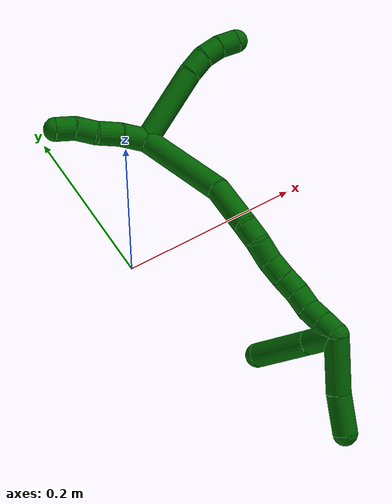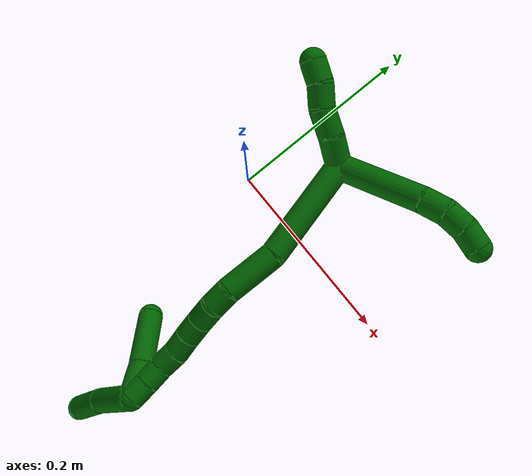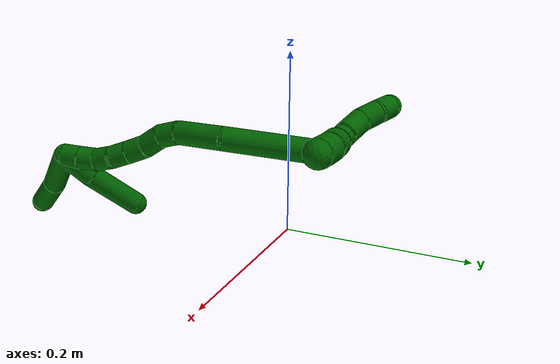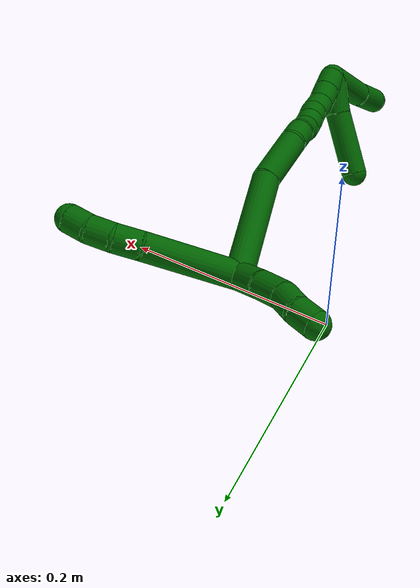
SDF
<sdf version="1.7">
 <world name="default">
  <model name="6">
   <static>0</static>
   <link name="6">
    <collision name="collision-cylinder-e_1_2_8">
     <pose>-0.020938 -0.035732 -0.009565 1.83236 -0.515076 -0.661153</pose>
     <geometry><cylinder><radius>0.0125</radius><length>0.085011</length></cylinder></geometry>
     <surface>
      <friction><ode><mu>1.16</mu><mu2>1.16</mu2><slip1>0</slip1><slip2>0</slip2></ode></friction>
      <contact><ode><kp>1e+06</kp><kd>1</kd><max_vel>0</max_vel><min_depth>0.001</min_depth></ode></contact>
     </surface>
    </collision>
    <visual name="visual-cylinder-e_1_2_8">
     <pose>-0.020938 -0.035732 -0.009565 1.83236 -0.515076 -0.661153</pose>
     <geometry><cylinder><radius>0.0125</radius><length>0.085011</length></cylinder></geometry>
     <material><ambient>0 0.392157 0.003922 1</ambient></material>
    </visual>
    <collision name="collision-cylinder-e_2_8_9">
     <pose>-0.048555 -0.080886 -0.020476 1.71261 -0.611904 -0.698483</pose>
     <geometry><cylinder><radius>0.0125</radius><length>0.023254</length></cylinder></geometry>
     <surface>
      <friction><ode><mu>1.16</mu><mu2>1.16</mu2><slip1>0</slip1><slip2>0</slip2></ode></friction>
      <contact><ode><kp>1e+06</kp><kd>1</kd><max_vel>0</max_vel><min_depth>0.001</min_depth></ode></contact>
     </surface>
    </collision>
    <visual name="visual-cylinder-e_2_8_9">
     <pose>-0.048555 -0.080886 -0.020476 1.71261 -0.611904 -0.698483</pose>
     <geometry><cylinder><radius>0.0125</radius><length>0.023254</length></cylinder></geometry>
     <material><ambient>0 0.392157 0.003922 1</ambient></material>
    </visual>
    <collision name="collision-cylinder-e_3_9_10">
     <pose>-0.062063 -0.098378 -0.020171 1.36914 -0.692267 -0.572589</pose>
     <geometry><cylinder><radius>0.0125</radius><length>0.021399</length></cylinder></geometry>
     <surface>
      <friction><ode><mu>1.16</mu><mu2>1.16</mu2><slip1>0</slip1><slip2>0</slip2></ode></friction>
      <contact><ode><kp>1e+06</kp><kd>1</kd><max_vel>0</max_vel><min_depth>0.001</min_depth></ode></contact>
     </surface>
    </collision>
    <visual name="visual-cylinder-e_3_9_10">
     <pose>-0.062063 -0.098378 -0.020171 1.36914 -0.692267 -0.572589</pose>
     <geometry><cylinder><radius>0.0125</radius><length>0.021399</length></cylinder></geometry>
     <material><ambient>0 0.392157 0.003922 1</ambient></material>
    </visual>
    <collision name="collision-cylinder-e_4_10_6">
     <pose>-0.074849 -0.11366 -0.014535 1.06591 -0.625882 -0.377211</pose>
     <geometry><cylinder><radius>0.0125</radius><length>0.020337</length></cylinder></geometry>
     <surface>
      <friction><ode><mu>1.16</mu><mu2>1.16</mu2><slip1>0</slip1><slip2>0</slip2></ode></friction>
      <contact><ode><kp>1e+06</kp><kd>1</kd><max_vel>0</max_vel><min_depth>0.001</min_depth></ode></contact>
     </surface>
    </collision>
    <visual name="visual-cylinder-e_4_10_6">
     <pose>-0.074849 -0.11366 -0.014535 1.06591 -0.625882 -0.377211</pose>
     <geometry><cylinder><radius>0.0125</radius><length>0.020337</length></cylinder></geometry>
     <material><ambient>0 0.392157 0.003922 1</ambient></material>
    </visual>
    <collision name="collision-cylinder-e_1_2_11">
     <pose>0.01012 0.004139 -0.01095 -2.78018 0.712871 -2.22926</pose>
     <geometry><cylinder><radius>0.0125</radius><length>0.030949</length></cylinder></geometry>
     <surface>
      <friction><ode><mu>1.16</mu><mu2>1.16</mu2><slip1>0</slip1><slip2>0</slip2></ode></friction>
      <contact><ode><kp>1e+06</kp><kd>1</kd><max_vel>0</max_vel><min_depth>0.001</min_depth></ode></contact>
     </surface>
    </collision>
    <visual name="visual-cylinder-e_1_2_11">
     <pose>0.01012 0.004139 -0.01095 -2.78018 0.712871 -2.22926</pose>
     <geometry><cylinder><radius>0.0125</radius><length>0.030949</length></cylinder></geometry>
     <material><ambient>0 0.392157 0.003922 1</ambient></material>
    </visual>
    <collision name="collision-cylinder-e_2_11_12">
     <pose>0.028644 0.013721 -0.030434 -2.57391 0.692854 -1.78226</pose>
     <geometry><cylinder><radius>0.0125</radius><length>0.026311</length></cylinder></geometry>
     <surface>
      <friction><ode><mu>1.16</mu><mu2>1.16</mu2><slip1>0</slip1><slip2>0</slip2></ode></friction>
      <contact><ode><kp>1e+06</kp><kd>1</kd><max_vel>0</max_vel><min_depth>0.001</min_depth></ode></contact>
     </surface>
    </collision>
    <visual name="visual-cylinder-e_2_11_12">
     <pose>0.028644 0.013721 -0.030434 -2.57391 0.692854 -1.78226</pose>
     <geometry><cylinder><radius>0.0125</radius><length>0.026311</length></cylinder></geometry>
     <material><ambient>0 0.392157 0.003922 1</ambient></material>
    </visual>
    <collision name="collision-cylinder-e_3_12_13">
     <pose>0.041562 0.023596 -0.047895 -2.6807 0.425416 -1.4881</pose>
     <geometry><cylinder><radius>0.0125</radius><length>0.021884</length></cylinder></geometry>
     <surface>
      <friction><ode><mu>1.16</mu><mu2>1.16</mu2><slip1>0</slip1><slip2>0</slip2></ode></friction>
      <contact><ode><kp>1e+06</kp><kd>1</kd><max_vel>0</max_vel><min_depth>0.001</min_depth></ode></contact>
     </surface>
    </collision>
    <visual name="visual-cylinder-e_3_12_13">
     <pose>0.041562 0.023596 -0.047895 -2.6807 0.425416 -1.4881</pose>
     <geometry><cylinder><radius>0.0125</radius><length>0.021884</length></cylinder></geometry>
     <material><ambient>0 0.392157 0.003922 1</ambient></material>
    </visual>
    <collision name="collision-cylinder-e_4_13_5">
     <pose>0.051264 0.034265 -0.063378 -2.38118 0.520452 -1.17542</pose>
     <geometry><cylinder><radius>0.0125</radius><length>0.020856</length></cylinder></geometry>
     <surface>
      <friction><ode><mu>1.16</mu><mu2>1.16</mu2><slip1>0</slip1><slip2>0</slip2></ode></friction>
      <contact><ode><kp>1e+06</kp><kd>1</kd><max_vel>0</max_vel><min_depth>0.001</min_depth></ode></contact>
     </surface>
    </collision>
    <visual name="visual-cylinder-e_4_13_5">
     <pose>0.051264 0.034265 -0.063378 -2.38118 0.520452 -1.17542</pose>
     <geometry><cylinder><radius>0.0125</radius><length>0.020856</length></cylinder></geometry>
     <material><ambient>0 0.392157 0.003922 1</ambient></material>
    </visual>
    <collision name="collision-cylinder-e_1_2_14">
     <pose>0.018746 -0.015993 0.045475 0.338182 0.37088 0.064031</pose>
     <geometry><cylinder><radius>0.0125</radius><length>0.103445</length></cylinder></geometry>
     <surface>
      <friction><ode><mu>1.16</mu><mu2>1.16</mu2><slip1>0</slip1><slip2>0</slip2></ode></friction>
      <contact><ode><kp>1e+06</kp><kd>1</kd><max_vel>0</max_vel><min_depth>0.001</min_depth></ode></contact>
     </surface>
    </collision>
    <visual name="visual-cylinder-e_1_2_14">
     <pose>0.018746 -0.015993 0.045475 0.338182 0.37088 0.064031</pose>
     <geometry><cylinder><radius>0.0125</radius><length>0.103445</length></cylinder></geometry>
     <material><ambient>0 0.392157 0.003922 1</ambient></material>
    </visual>
    <collision name="collision-cylinder-e_2_14_15">
     <pose>0.050311 -0.033704 0.113493 0.076023 0.51582 0.020063</pose>
     <geometry><cylinder><radius>0.0125</radius><length>0.051979</length></cylinder></geometry>
     <surface>
      <friction><ode><mu>1.16</mu><mu2>1.16</mu2><slip1>0</slip1><slip2>0</slip2></ode></friction>
      <contact><ode><kp>1e+06</kp><kd>1</kd><max_vel>0</max_vel><min_depth>0.001</min_depth></ode></contact>
     </surface>
    </collision>
    <visual name="visual-cylinder-e_2_14_15">
     <pose>0.050311 -0.033704 0.113493 0.076023 0.51582 0.020063</pose>
     <geometry><cylinder><radius>0.0125</radius><length>0.051979</length></cylinder></geometry>
     <material><ambient>0 0.392157 0.003922 1</ambient></material>
    </visual>
    <collision name="collision-cylinder-e_3_15_16">
     <pose>0.065744 -0.034839 0.146143 -0.057471 0.252584 -0.007299</pose>
     <geometry><cylinder><radius>0.0125</radius><length>0.020911</length></cylinder></geometry>
     <surface>
      <friction><ode><mu>1.16</mu><mu2>1.16</mu2><slip1>0</slip1><slip2>0</slip2></ode></friction>
      <contact><ode><kp>1e+06</kp><kd>1</kd><max_vel>0</max_vel><min_depth>0.001</min_depth></ode></contact>
     </surface>
    </collision>
    <visual name="visual-cylinder-e_3_15_16">
     <pose>0.065744 -0.034839 0.146143 -0.057471 0.252584 -0.007299</pose>
     <geometry><cylinder><radius>0.0125</radius><length>0.020911</length></cylinder></geometry>
     <material><ambient>0 0.392157 0.003922 1</ambient></material>
    </visual>
    <collision name="collision-cylinder-e_4_16_17">
     <pose>0.068108 -0.031458 0.167302 -0.248139 -0.021759 0.002714</pose>
     <geometry><cylinder><radius>0.0125</radius><length>0.022808</length></cylinder></geometry>
     <surface>
      <friction><ode><mu>1.16</mu><mu2>1.16</mu2><slip1>0</slip1><slip2>0</slip2></ode></friction>
      <contact><ode><kp>1e+06</kp><kd>1</kd><max_vel>0</max_vel><min_depth>0.001</min_depth></ode></contact>
     </surface>
    </collision>
    <visual name="visual-cylinder-e_4_16_17">
     <pose>0.068108 -0.031458 0.167302 -0.248139 -0.021759 0.002714</pose>
     <geometry><cylinder><radius>0.0125</radius><length>0.022808</length></cylinder></geometry>
     <material><ambient>0 0.392157 0.003922 1</ambient></material>
    </visual>
    <collision name="collision-cylinder-e_5_17_18">
     <pose>0.06893 -0.028011 0.188533 -0.063455 0.104509 -0.00332</pose>
     <geometry><cylinder><radius>0.0125</radius><length>0.020509</length></cylinder></geometry>
     <surface>
      <friction><ode><mu>1.16</mu><mu2>1.16</mu2><slip1>0</slip1><slip2>0</slip2></ode></friction>
      <contact><ode><kp>1e+06</kp><kd>1</kd><max_vel>0</max_vel><min_depth>0.001</min_depth></ode></contact>
     </surface>
    </collision>
    <visual name="visual-cylinder-e_5_17_18">
     <pose>0.06893 -0.028011 0.188533 -0.063455 0.104509 -0.00332</pose>
     <geometry><cylinder><radius>0.0125</radius><length>0.020509</length></cylinder></geometry>
     <material><ambient>0 0.392157 0.003922 1</ambient></material>
    </visual>
    <collision name="collision-cylinder-e_6_18_19">
     <pose>0.07101 -0.027316 0.208808 -0.004784 0.099742 -0.000239</pose>
     <geometry><cylinder><radius>0.0125</radius><length>0.020296</length></cylinder></geometry>
     <surface>
      <friction><ode><mu>1.16</mu><mu2>1.16</mu2><slip1>0</slip1><slip2>0</slip2></ode></friction>
      <contact><ode><kp>1e+06</kp><kd>1</kd><max_vel>0</max_vel><min_depth>0.001</min_depth></ode></contact>
     </surface>
    </collision>
    <visual name="visual-cylinder-e_6_18_19">
     <pose>0.07101 -0.027316 0.208808 -0.004784 0.099742 -0.000239</pose>
     <geometry><cylinder><radius>0.0125</radius><length>0.020296</length></cylinder></geometry>
     <material><ambient>0 0.392157 0.003922 1</ambient></material>
    </visual>
    <collision name="collision-cylinder-e_7_19_20">
     <pose>0.074874 -0.026588 0.228471 -0.070894 0.289221 -0.010328</pose>
     <geometry><cylinder><radius>0.0125</radius><length>0.020008</length></cylinder></geometry>
     <surface>
      <friction><ode><mu>1.16</mu><mu2>1.16</mu2><slip1>0</slip1><slip2>0</slip2></ode></friction>
      <contact><ode><kp>1e+06</kp><kd>1</kd><max_vel>0</max_vel><min_depth>0.001</min_depth></ode></contact>
     </surface>
    </collision>
    <visual name="visual-cylinder-e_7_19_20">
     <pose>0.074874 -0.026588 0.228471 -0.070894 0.289221 -0.010328</pose>
     <geometry><cylinder><radius>0.0125</radius><length>0.020008</length></cylinder></geometry>
     <material><ambient>0 0.392157 0.003922 1</ambient></material>
    </visual>
    <collision name="collision-cylinder-e_8_20_21">
     <pose>0.081738 -0.027894 0.246979 0.218409 0.412627 0.045886</pose>
     <geometry><cylinder><radius>0.0125</radius><length>0.020002</length></cylinder></geometry>
     <surface>
      <friction><ode><mu>1.16</mu><mu2>1.16</mu2><slip1>0</slip1><slip2>0</slip2></ode></friction>
      <contact><ode><kp>1e+06</kp><kd>1</kd><max_vel>0</max_vel><min_depth>0.001</min_depth></ode></contact>
     </surface>
    </collision>
    <visual name="visual-cylinder-e_8_20_21">
     <pose>0.081738 -0.027894 0.246979 0.218409 0.412627 0.045886</pose>
     <geometry><cylinder><radius>0.0125</radius><length>0.020002</length></cylinder></geometry>
     <material><ambient>0 0.392157 0.003922 1</ambient></material>
    </visual>
    <collision name="collision-cylinder-e_9_21_1">
     <pose>0.090062 -0.03175 0.264772 0.20831 0.444977 0.047289</pose>
     <geometry><cylinder><radius>0.0125</radius><length>0.020041</length></cylinder></geometry>
     <surface>
      <friction><ode><mu>1.16</mu><mu2>1.16</mu2><slip1>0</slip1><slip2>0</slip2></ode></friction>
      <contact><ode><kp>1e+06</kp><kd>1</kd><max_vel>0</max_vel><min_depth>0.001</min_depth></ode></contact>
     </surface>
    </collision>
    <visual name="visual-cylinder-e_9_21_1">
     <pose>0.090062 -0.03175 0.264772 0.20831 0.444977 0.047289</pose>
     <geometry><cylinder><radius>0.0125</radius><length>0.020041</length></cylinder></geometry>
     <material><ambient>0 0.392157 0.003922 1</ambient></material>
    </visual>
    <collision name="collision-cylinder-e_1_1_22">
     <pose>0.095191 -0.013501 0.294771 -0.760439 0.027967 -0.011178</pose>
     <geometry><cylinder><radius>0.0125</radius><length>0.058405</length></cylinder></geometry>
     <surface>
      <friction><ode><mu>1.16</mu><mu2>1.16</mu2><slip1>0</slip1><slip2>0</slip2></ode></friction>
      <contact><ode><kp>1e+06</kp><kd>1</kd><max_vel>0</max_vel><min_depth>0.001</min_depth></ode></contact>
     </surface>
    </collision>
    <visual name="visual-cylinder-e_1_1_22">
     <pose>0.095191 -0.013501 0.294771 -0.760439 0.027967 -0.011178</pose>
     <geometry><cylinder><radius>0.0125</radius><length>0.058405</length></cylinder></geometry>
     <material><ambient>0 0.392157 0.003922 1</ambient></material>
    </visual>
    <collision name="collision-cylinder-e_2_22_4">
     <pose>0.097098 0.018874 0.33269 -0.631108 0.052436 -0.017122</pose>
     <geometry><cylinder><radius>0.0125</radius><length>0.041595</length></cylinder></geometry>
     <surface>
      <friction><ode><mu>1.16</mu><mu2>1.16</mu2><slip1>0</slip1><slip2>0</slip2></ode></friction>
      <contact><ode><kp>1e+06</kp><kd>1</kd><max_vel>0</max_vel><min_depth>0.001</min_depth></ode></contact>
     </surface>
    </collision>
    <visual name="visual-cylinder-e_2_22_4">
     <pose>0.097098 0.018874 0.33269 -0.631108 0.052436 -0.017122</pose>
     <geometry><cylinder><radius>0.0125</radius><length>0.041595</length></cylinder></geometry>
     <material><ambient>0 0.392157 0.003922 1</ambient></material>
    </visual>
    <collision name="collision-cylinder-e_1_1_23">
     <pose>0.087425 -0.017643 0.267588 -1.93188 -0.386452 0.551664</pose>
     <geometry><cylinder><radius>0.0125</radius><length>0.036877</length></cylinder></geometry>
     <surface>
      <friction><ode><mu>1.16</mu><mu2>1.16</mu2><slip1>0</slip1><slip2>0</slip2></ode></friction>
      <contact><ode><kp>1e+06</kp><kd>1</kd><max_vel>0</max_vel><min_depth>0.001</min_depth></ode></contact>
     </surface>
    </collision>
    <visual name="visual-cylinder-e_1_1_23">
     <pose>0.087425 -0.017643 0.267588 -1.93188 -0.386452 0.551664</pose>
     <geometry><cylinder><radius>0.0125</radius><length>0.036877</length></cylinder></geometry>
     <material><ambient>0 0.392157 0.003922 1</ambient></material>
    </visual>
    <collision name="collision-cylinder-e_2_23_3">
     <pose>0.071998 0.026304 0.24964 -1.97349 -0.271935 0.408205</pose>
     <geometry><cylinder><radius>0.0125</radius><length>0.063123</length></cylinder></geometry>
     <surface>
      <friction><ode><mu>1.16</mu><mu2>1.16</mu2><slip1>0</slip1><slip2>0</slip2></ode></friction>
      <contact><ode><kp>1e+06</kp><kd>1</kd><max_vel>0</max_vel><min_depth>0.001</min_depth></ode></contact>
     </surface>
    </collision>
    <visual name="visual-cylinder-e_2_23_3">
     <pose>0.071998 0.026304 0.24964 -1.97349 -0.271935 0.408205</pose>
     <geometry><cylinder><radius>0.0125</radius><length>0.063123</length></cylinder></geometry>
     <material><ambient>0 0.392157 0.003922 1</ambient></material>
    </visual>
    <collision name="collision-sphere-3">
     <pose>0.063521 0.054274 0.237725 0 -0 0</pose>
     <geometry><sphere><radius>0.0125</radius></sphere></geometry>
     <surface>
      <friction><ode><mu>1.16</mu><mu2>1.16</mu2><slip1>0</slip1><slip2>0</slip2></ode></friction>
      <contact><ode><kp>1e+06</kp><kd>1</kd><max_vel>0</max_vel><min_depth>0.001</min_depth></ode></contact>
     </surface>
    </collision>
    <visual name="visual-sphere-3">
     <pose>0.063521 0.054274 0.237725 0 -0 0</pose>
     <geometry><sphere><radius>0.0125</radius></sphere></geometry>
     <material><ambient>0 0.392157 0.003922 1</ambient></material>
    </visual>
    <collision name="collision-sphere-23">
     <pose>0.080476 -0.001666 0.261554 0 -0 0</pose>
     <geometry><sphere><radius>0.0125</radius></sphere></geometry>
     <surface>
      <friction><ode><mu>1.16</mu><mu2>1.16</mu2><slip1>0</slip1><slip2>0</slip2></ode></friction>
      <contact><ode><kp>1e+06</kp><kd>1</kd><max_vel>0</max_vel><min_depth>0.001</min_depth></ode></contact>
     </surface>
    </collision>
    <visual name="visual-sphere-23">
     <pose>0.080476 -0.001666 0.261554 0 -0 0</pose>
     <geometry><sphere><radius>0.0125</radius></sphere></geometry>
     <material><ambient>0 0.392157 0.003922 1</ambient></material>
    </visual>
    <collision name="collision-sphere-4">
     <pose>0.098188 0.031128 0.349458 0 -0 0</pose>
     <geometry><sphere><radius>0.0125</radius></sphere></geometry>
     <surface>
      <friction><ode><mu>1.16</mu><mu2>1.16</mu2><slip1>0</slip1><slip2>0</slip2></ode></friction>
      <contact><ode><kp>1e+06</kp><kd>1</kd><max_vel>0</max_vel><min_depth>0.001</min_depth></ode></contact>
     </surface>
    </collision>
    <visual name="visual-sphere-4">
     <pose>0.098188 0.031128 0.349458 0 -0 0</pose>
     <geometry><sphere><radius>0.0125</radius></sphere></geometry>
     <material><ambient>0 0.392157 0.003922 1</ambient></material>
    </visual>
    <collision name="collision-sphere-22">
     <pose>0.096008 0.006619 0.315921 0 -0 0</pose>
     <geometry><sphere><radius>0.0125</radius></sphere></geometry>
     <surface>
      <friction><ode><mu>1.16</mu><mu2>1.16</mu2><slip1>0</slip1><slip2>0</slip2></ode></friction>
      <contact><ode><kp>1e+06</kp><kd>1</kd><max_vel>0</max_vel><min_depth>0.001</min_depth></ode></contact>
     </surface>
    </collision>
    <visual name="visual-sphere-22">
     <pose>0.096008 0.006619 0.315921 0 -0 0</pose>
     <geometry><sphere><radius>0.0125</radius></sphere></geometry>
     <material><ambient>0 0.392157 0.003922 1</ambient></material>
    </visual>
    <collision name="collision-sphere-1">
     <pose>0.094375 -0.03362 0.273621 0 -0 0</pose>
     <geometry><sphere><radius>0.0125</radius></sphere></geometry>
     <surface>
      <friction><ode><mu>1.16</mu><mu2>1.16</mu2><slip1>0</slip1><slip2>0</slip2></ode></friction>
      <contact><ode><kp>1e+06</kp><kd>1</kd><max_vel>0</max_vel><min_depth>0.001</min_depth></ode></contact>
     </surface>
    </collision>
    <visual name="visual-sphere-1">
     <pose>0.094375 -0.03362 0.273621 0 -0 0</pose>
     <geometry><sphere><radius>0.0125</radius></sphere></geometry>
     <material><ambient>0 0.392157 0.003922 1</ambient></material>
    </visual>
    <collision name="collision-sphere-21">
     <pose>0.085748 -0.029879 0.255923 0 -0 0</pose>
     <geometry><sphere><radius>0.0125</radius></sphere></geometry>
     <surface>
      <friction><ode><mu>1.16</mu><mu2>1.16</mu2><slip1>0</slip1><slip2>0</slip2></ode></friction>
      <contact><ode><kp>1e+06</kp><kd>1</kd><max_vel>0</max_vel><min_depth>0.001</min_depth></ode></contact>
     </surface>
    </collision>
    <visual name="visual-sphere-21">
     <pose>0.085748 -0.029879 0.255923 0 -0 0</pose>
     <geometry><sphere><radius>0.0125</radius></sphere></geometry>
     <material><ambient>0 0.392157 0.003922 1</ambient></material>
    </visual>
    <collision name="collision-sphere-11">
     <pose>0.020241 0.008279 -0.0219 0 -0 0</pose>
     <geometry><sphere><radius>0.0125</radius></sphere></geometry>
     <surface>
      <friction><ode><mu>1.16</mu><mu2>1.16</mu2><slip1>0</slip1><slip2>0</slip2></ode></friction>
      <contact><ode><kp>1e+06</kp><kd>1</kd><max_vel>0</max_vel><min_depth>0.001</min_depth></ode></contact>
     </surface>
    </collision>
    <visual name="visual-sphere-11">
     <pose>0.020241 0.008279 -0.0219 0 -0 0</pose>
     <geometry><sphere><radius>0.0125</radius></sphere></geometry>
     <material><ambient>0 0.392157 0.003922 1</ambient></material>
    </visual>
    <collision name="collision-sphere-6">
     <pose>-0.080806 -0.120873 -0.010549 0 -0 0</pose>
     <geometry><sphere><radius>0.0125</radius></sphere></geometry>
     <surface>
      <friction><ode><mu>1.16</mu><mu2>1.16</mu2><slip1>0</slip1><slip2>0</slip2></ode></friction>
      <contact><ode><kp>1e+06</kp><kd>1</kd><max_vel>0</max_vel><min_depth>0.001</min_depth></ode></contact>
     </surface>
    </collision>
    <visual name="visual-sphere-6">
     <pose>-0.080806 -0.120873 -0.010549 0 -0 0</pose>
     <geometry><sphere><radius>0.0125</radius></sphere></geometry>
     <material><ambient>0 0.392157 0.003922 1</ambient></material>
    </visual>
    <collision name="collision-sphere-10">
     <pose>-0.068892 -0.106447 -0.018522 0 -0 0</pose>
     <geometry><sphere><radius>0.0125</radius></sphere></geometry>
     <surface>
      <friction><ode><mu>1.16</mu><mu2>1.16</mu2><slip1>0</slip1><slip2>0</slip2></ode></friction>
      <contact><ode><kp>1e+06</kp><kd>1</kd><max_vel>0</max_vel><min_depth>0.001</min_depth></ode></contact>
     </surface>
    </collision>
    <visual name="visual-sphere-10">
     <pose>-0.068892 -0.106447 -0.018522 0 -0 0</pose>
     <geometry><sphere><radius>0.0125</radius></sphere></geometry>
     <material><ambient>0 0.392157 0.003922 1</ambient></material>
    </visual>
    <collision name="collision-sphere-9">
     <pose>-0.055234 -0.090308 -0.021821 0 -0 0</pose>
     <geometry><sphere><radius>0.0125</radius></sphere></geometry>
     <surface>
      <friction><ode><mu>1.16</mu><mu2>1.16</mu2><slip1>0</slip1><slip2>0</slip2></ode></friction>
      <contact><ode><kp>1e+06</kp><kd>1</kd><max_vel>0</max_vel><min_depth>0.001</min_depth></ode></contact>
     </surface>
    </collision>
    <visual name="visual-sphere-9">
     <pose>-0.055234 -0.090308 -0.021821 0 -0 0</pose>
     <geometry><sphere><radius>0.0125</radius></sphere></geometry>
     <material><ambient>0 0.392157 0.003922 1</ambient></material>
    </visual>
    <collision name="collision-sphere-2">
     <geometry><sphere><radius>0.0125</radius></sphere></geometry>
     <surface>
      <friction><ode><mu>1.16</mu><mu2>1.16</mu2><slip1>0</slip1><slip2>0</slip2></ode></friction>
      <contact><ode><kp>1e+06</kp><kd>1</kd><max_vel>0</max_vel><min_depth>0.001</min_depth></ode></contact>
     </surface>
    </collision>
    <visual name="visual-sphere-2">
     <geometry><sphere><radius>0.0125</radius></sphere></geometry>
     <material><ambient>0 0.392157 0.003922 1</ambient></material>
    </visual>
    <collision name="collision-sphere-19">
     <pose>0.072021 -0.027268 0.218906 0 -0 0</pose>
     <geometry><sphere><radius>0.0125</radius></sphere></geometry>
     <surface>
      <friction><ode><mu>1.16</mu><mu2>1.16</mu2><slip1>0</slip1><slip2>0</slip2></ode></friction>
      <contact><ode><kp>1e+06</kp><kd>1</kd><max_vel>0</max_vel><min_depth>0.001</min_depth></ode></contact>
     </surface>
    </collision>
    <visual name="visual-sphere-19">
     <pose>0.072021 -0.027268 0.218906 0 -0 0</pose>
     <geometry><sphere><radius>0.0125</radius></sphere></geometry>
     <material><ambient>0 0.392157 0.003922 1</ambient></material>
    </visual>
    <collision name="collision-sphere-8">
     <pose>-0.041876 -0.071465 -0.019131 0 -0 0</pose>
     <geometry><sphere><radius>0.0125</radius></sphere></geometry>
     <surface>
      <friction><ode><mu>1.16</mu><mu2>1.16</mu2><slip1>0</slip1><slip2>0</slip2></ode></friction>
      <contact><ode><kp>1e+06</kp><kd>1</kd><max_vel>0</max_vel><min_depth>0.001</min_depth></ode></contact>
     </surface>
    </collision>
    <visual name="visual-sphere-8">
     <pose>-0.041876 -0.071465 -0.019131 0 -0 0</pose>
     <geometry><sphere><radius>0.0125</radius></sphere></geometry>
     <material><ambient>0 0.392157 0.003922 1</ambient></material>
    </visual>
    <collision name="collision-sphere-12">
     <pose>0.037046 0.019163 -0.038969 0 -0 0</pose>
     <geometry><sphere><radius>0.0125</radius></sphere></geometry>
     <surface>
      <friction><ode><mu>1.16</mu><mu2>1.16</mu2><slip1>0</slip1><slip2>0</slip2></ode></friction>
      <contact><ode><kp>1e+06</kp><kd>1</kd><max_vel>0</max_vel><min_depth>0.001</min_depth></ode></contact>
     </surface>
    </collision>
    <visual name="visual-sphere-12">
     <pose>0.037046 0.019163 -0.038969 0 -0 0</pose>
     <geometry><sphere><radius>0.0125</radius></sphere></geometry>
     <material><ambient>0 0.392157 0.003922 1</ambient></material>
    </visual>
    <collision name="collision-sphere-13">
     <pose>0.046078 0.028029 -0.056822 0 -0 0</pose>
     <geometry><sphere><radius>0.0125</radius></sphere></geometry>
     <surface>
      <friction><ode><mu>1.16</mu><mu2>1.16</mu2><slip1>0</slip1><slip2>0</slip2></ode></friction>
      <contact><ode><kp>1e+06</kp><kd>1</kd><max_vel>0</max_vel><min_depth>0.001</min_depth></ode></contact>
     </surface>
    </collision>
    <visual name="visual-sphere-13">
     <pose>0.046078 0.028029 -0.056822 0 -0 0</pose>
     <geometry><sphere><radius>0.0125</radius></sphere></geometry>
     <material><ambient>0 0.392157 0.003922 1</ambient></material>
    </visual>
    <collision name="collision-sphere-5">
     <pose>0.056449 0.0405 -0.069933 0 -0 0</pose>
     <geometry><sphere><radius>0.0125</radius></sphere></geometry>
     <surface>
      <friction><ode><mu>1.16</mu><mu2>1.16</mu2><slip1>0</slip1><slip2>0</slip2></ode></friction>
      <contact><ode><kp>1e+06</kp><kd>1</kd><max_vel>0</max_vel><min_depth>0.001</min_depth></ode></contact>
     </surface>
    </collision>
    <visual name="visual-sphere-5">
     <pose>0.056449 0.0405 -0.069933 0 -0 0</pose>
     <geometry><sphere><radius>0.0125</radius></sphere></geometry>
     <material><ambient>0 0.392157 0.003922 1</ambient></material>
    </visual>
    <collision name="collision-sphere-14">
     <pose>0.037492 -0.031987 0.090951 0 -0 0</pose>
     <geometry><sphere><radius>0.0125</radius></sphere></geometry>
     <surface>
      <friction><ode><mu>1.16</mu><mu2>1.16</mu2><slip1>0</slip1><slip2>0</slip2></ode></friction>
      <contact><ode><kp>1e+06</kp><kd>1</kd><max_vel>0</max_vel><min_depth>0.001</min_depth></ode></contact>
     </surface>
    </collision>
    <visual name="visual-sphere-14">
     <pose>0.037492 -0.031987 0.090951 0 -0 0</pose>
     <geometry><sphere><radius>0.0125</radius></sphere></geometry>
     <material><ambient>0 0.392157 0.003922 1</ambient></material>
    </visual>
    <collision name="collision-sphere-15">
     <pose>0.063131 -0.035421 0.136036 0 -0 0</pose>
     <geometry><sphere><radius>0.0125</radius></sphere></geometry>
     <surface>
      <friction><ode><mu>1.16</mu><mu2>1.16</mu2><slip1>0</slip1><slip2>0</slip2></ode></friction>
      <contact><ode><kp>1e+06</kp><kd>1</kd><max_vel>0</max_vel><min_depth>0.001</min_depth></ode></contact>
     </surface>
    </collision>
    <visual name="visual-sphere-15">
     <pose>0.063131 -0.035421 0.136036 0 -0 0</pose>
     <geometry><sphere><radius>0.0125</radius></sphere></geometry>
     <material><ambient>0 0.392157 0.003922 1</ambient></material>
    </visual>
    <collision name="collision-sphere-16">
     <pose>0.068356 -0.034258 0.15625 0 -0 0</pose>
     <geometry><sphere><radius>0.0125</radius></sphere></geometry>
     <surface>
      <friction><ode><mu>1.16</mu><mu2>1.16</mu2><slip1>0</slip1><slip2>0</slip2></ode></friction>
      <contact><ode><kp>1e+06</kp><kd>1</kd><max_vel>0</max_vel><min_depth>0.001</min_depth></ode></contact>
     </surface>
    </collision>
    <visual name="visual-sphere-16">
     <pose>0.068356 -0.034258 0.15625 0 -0 0</pose>
     <geometry><sphere><radius>0.0125</radius></sphere></geometry>
     <material><ambient>0 0.392157 0.003922 1</ambient></material>
    </visual>
    <collision name="collision-sphere-17">
     <pose>0.06786 -0.028658 0.178355 0 -0 0</pose>
     <geometry><sphere><radius>0.0125</radius></sphere></geometry>
     <surface>
      <friction><ode><mu>1.16</mu><mu2>1.16</mu2><slip1>0</slip1><slip2>0</slip2></ode></friction>
      <contact><ode><kp>1e+06</kp><kd>1</kd><max_vel>0</max_vel><min_depth>0.001</min_depth></ode></contact>
     </surface>
    </collision>
    <visual name="visual-sphere-17">
     <pose>0.06786 -0.028658 0.178355 0 -0 0</pose>
     <geometry><sphere><radius>0.0125</radius></sphere></geometry>
     <material><ambient>0 0.392157 0.003922 1</ambient></material>
    </visual>
    <collision name="collision-sphere-18">
     <pose>0.07 -0.027364 0.198711 0 -0 0</pose>
     <geometry><sphere><radius>0.0125</radius></sphere></geometry>
     <surface>
      <friction><ode><mu>1.16</mu><mu2>1.16</mu2><slip1>0</slip1><slip2>0</slip2></ode></friction>
      <contact><ode><kp>1e+06</kp><kd>1</kd><max_vel>0</max_vel><min_depth>0.001</min_depth></ode></contact>
     </surface>
    </collision>
    <visual name="visual-sphere-18">
     <pose>0.07 -0.027364 0.198711 0 -0 0</pose>
     <geometry><sphere><radius>0.0125</radius></sphere></geometry>
     <material><ambient>0 0.392157 0.003922 1</ambient></material>
    </visual>
    <collision name="collision-sphere-20">
     <pose>0.077727 -0.025909 0.238035 0 -0 0</pose>
     <geometry><sphere><radius>0.0125</radius></sphere></geometry>
     <surface>
      <friction><ode><mu>1.16</mu><mu2>1.16</mu2><slip1>0</slip1><slip2>0</slip2></ode></friction>
      <contact><ode><kp>1e+06</kp><kd>1</kd><max_vel>0</max_vel><min_depth>0.001</min_depth></ode></contact>
     </surface>
    </collision>
    <visual name="visual-sphere-20">
     <pose>0.077727 -0.025909 0.238035 0 -0 0</pose>
     <geometry><sphere><radius>0.0125</radius></sphere></geometry>
     <material><ambient>0 0.392157 0.003922 1</ambient></material>
    </visual>
    <inertial>
     <pose>0.039905 -0.019088 0.122069 0 -0 0</pose>
     <mass>0.75</mass>
     <inertia><ixx>0.000186</ixx><ixy>0</ixy><ixz>0</ixz><iyy>0.000122</iyy><iyz>0</iyz><izz>4e-05</izz></inertia>
    </inertial>
   </link>
   <pose>0.058258 0.063504 0.113033 -2.08155 -0.638937 -2.49496</pose>
  </model>
 </world>
</sdf>
